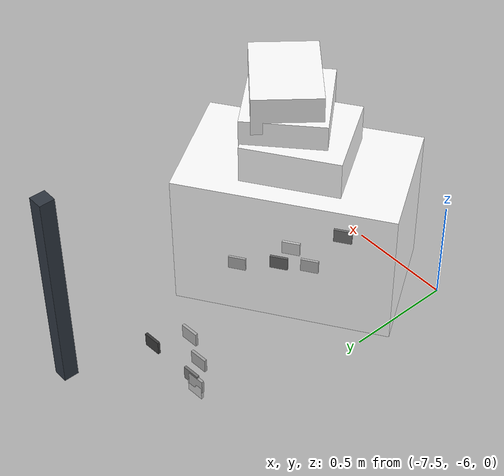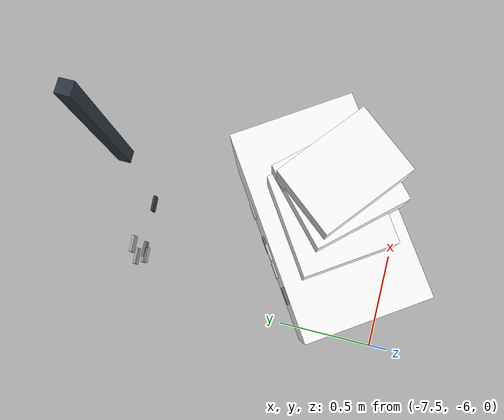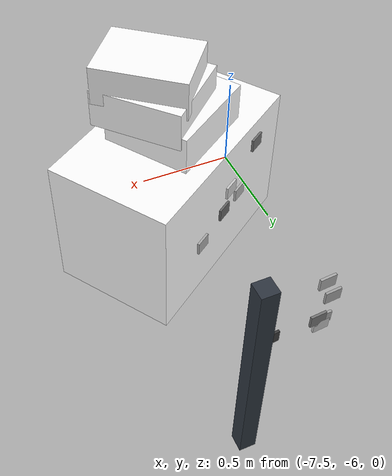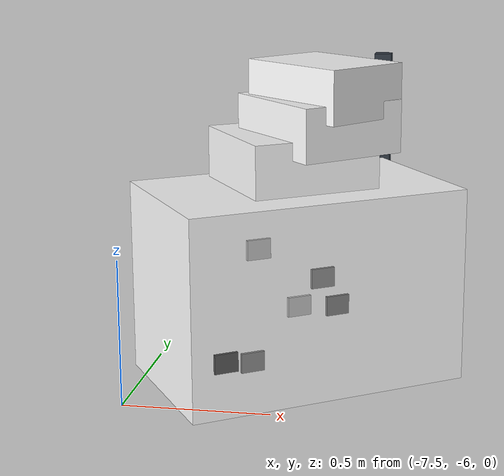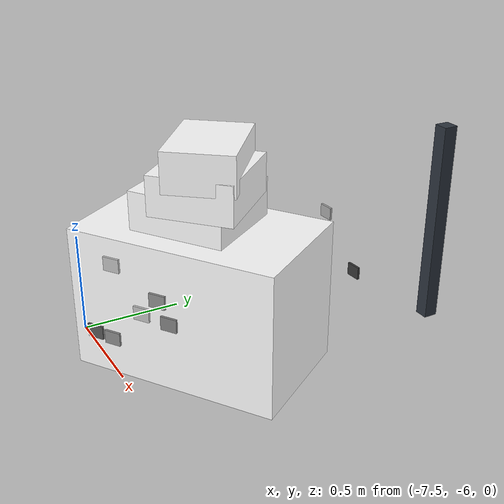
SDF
<sdf version="1.9">
 <world name="warehouse_irregular">
  <model name="panel_23_1_-1">
   <static>true</static>
   <pose>-7.321485212479612 -4.7164891690781525 0.1275751095313873 0 0 0.06392748084731525</pose>
   <link name="body">
    <visual name="surface">
     <geometry><box><size>0.08 0.012 0.065</size></box></geometry>
     <material>
      <ambient>0.7567786720598747 0.7567786720598747 0.7567786720598747 1</ambient>
      <diffuse>0.7567786720598747 0.7567786720598747 0.7567786720598747 1</diffuse>
     </material>
    </visual>
   </link>
  </model>
  <model name="panel_23_2_-1">
   <static>true</static>
   <pose>-7.05458139075606 -4.699403398847534 0.19606144349616522 0 0 0.06392748084731525</pose>
   <link name="body">
    <visual name="surface">
     <geometry><box><size>0.08 0.012 0.065</size></box></geometry>
     <material>
      <ambient>0.2264098315245679 0.2264098315245679 0.2264098315245679 1</ambient>
      <diffuse>0.2264098315245679 0.2264098315245679 0.2264098315245679 1</diffuse>
     </material>
    </visual>
   </link>
  </model>
  <model name="panel_23_3_-1">
   <static>true</static>
   <pose>-7.298738386238302 -4.715033037636777 0.18086479976255804 0 0 0.06392748084731525</pose>
   <link name="body">
    <visual name="surface">
     <geometry><box><size>0.08 0.012 0.065</size></box></geometry>
     <material>
      <ambient>0.4662739748111252 0.4662739748111252 0.4662739748111252 1</ambient>
      <diffuse>0.4662739748111252 0.4662739748111252 0.4662739748111252 1</diffuse>
     </material>
    </visual>
   </link>
  </model>
  <model name="panel_23_4_-1">
   <static>true</static>
   <pose>-7.303042958814106 -4.715308593593588 0.43556237536582776 0 0 0.06392748084731525</pose>
   <link name="body">
    <visual name="surface">
     <geometry><box><size>0.08 0.012 0.065</size></box></geometry>
     <material>
      <ambient>0.6695266798867601 0.6695266798867601 0.6695266798867601 1</ambient>
      <diffuse>0.6695266798867601 0.6695266798867601 0.6695266798867601 1</diffuse>
     </material>
    </visual>
   </link>
  </model>
  <model name="panel_23_5_-1">
   <static>true</static>
   <pose>-7.327186020849928 -4.7168541046617465 0.16970066632918085 0 0 0.06392748084731525</pose>
   <link name="body">
    <visual name="surface">
     <geometry><box><size>0.08 0.012 0.065</size></box></geometry>
     <material>
      <ambient>0.6477002602863507 0.6477002602863507 0.6477002602863507 1</ambient>
      <diffuse>0.6477002602863507 0.6477002602863507 0.6477002602863507 1</diffuse>
     </material>
    </visual>
   </link>
  </model>
  <model name="panel_23_6_-1">
   <static>true</static>
   <pose>-7.350611376439244 -4.7183536719612515 0.3186064492006164 0 0 0.06392748084731525</pose>
   <link name="body">
    <visual name="surface">
     <geometry><box><size>0.08 0.012 0.065</size></box></geometry>
     <material>
      <ambient>0.6359118709224572 0.6359118709224572 0.6359118709224572 1</ambient>
      <diffuse>0.6359118709224572 0.6359118709224572 0.6359118709224572 1</diffuse>
     </material>
    </visual>
   </link>
  </model>
  <model name="post_23_1">
   <static>true</static>
   <pose>-6.793562252673449 -4.4167591657027785 0.5 0 0 0</pose>
   <link name="body">
    <visual name="surface">
     <geometry><box><size>0.07 0.07 1</size></box></geometry>
     <material><ambient>0.18 0.21 0.25 1</ambient><diffuse>0.18 0.21 0.25 1</diffuse></material>
    </visual>
    <collision name="solid"><geometry><box><size>0.07 0.07 1</size></box></geometry></collision>
   </link>
  </model>
  <model name="cabinet_25">
   <static>true</static>
   <pose>-6.980146539905996 -5.593521580022998 0.33923096126565305 0 0 0.5889396456066238</pose>
   <link name="body">
    <visual name="surface">
     <geometry><box><size>1 0.6 0.6784619225313061</size></box></geometry>
     <material>
      <ambient>1 1 1 1</ambient>
      <diffuse>1 1 1 1</diffuse>
      <pbr>
       <metal>
        <albedo_map>model://feature_warehouse_materials/textures/storage_25.png</albedo_map>
        <roughness>.9</roughness>
        <metalness>0</metalness>
       </metal>
      </pbr>
     </material>
    </visual>
    <collision name="solid"><geometry><box><size>1 0.6 0.6784619225313061</size></box></geometry></collision>
   </link>
  </model>
  <model name="panel_25_0_-1">
   <static>true</static>
   <pose>-6.848111647650774 -5.872113171582088 0.43649183449700835 0 0 0.5889396456066238</pose>
   <link name="body">
    <visual name="surface">
     <geometry><box><size>0.08 0.012 0.065</size></box></geometry>
     <material>
      <ambient>0.5540316493555866 0.5540316493555866 0.5540316493555866 1</ambient>
      <diffuse>0.5540316493555866 0.5540316493555866 0.5540316493555866 1</diffuse>
     </material>
    </visual>
   </link>
  </model>
  <model name="panel_25_0_1">
   <static>true</static>
   <pose>-7.1869542150611565 -5.364879779039029 0.43649183449700835 0 0 0.5889396456066238</pose>
   <link name="body">
    <visual name="surface">
     <geometry><box><size>0.08 0.012 0.065</size></box></geometry>
     <material>
      <ambient>0.7933650086156862 0.7933650086156862 0.7933650086156862 1</ambient>
      <diffuse>0.7933650086156862 0.7933650086156862 0.7933650086156862 1</diffuse>
     </material>
    </visual>
   </link>
  </model>
  <model name="panel_25_1_-1">
   <static>true</static>
   <pose>-6.918286101955845 -5.918991182006716 0.35182016730951493 0 0 0.5889396456066238</pose>
   <link name="body">
    <visual name="surface">
     <geometry><box><size>0.08 0.012 0.065</size></box></geometry>
     <material>
      <ambient>0.7504767644359817 0.7504767644359817 0.7504767644359817 1</ambient>
      <diffuse>0.7504767644359817 0.7504767644359817 0.7504767644359817 1</diffuse>
     </material>
    </visual>
   </link>
  </model>
  <model name="panel_25_1_1">
   <static>true</static>
   <pose>-7.257128669366227 -5.411757789463657 0.35182016730951493 0 0 0.5889396456066238</pose>
   <link name="body">
    <visual name="surface">
     <geometry><box><size>0.08 0.012 0.065</size></box></geometry>
     <material>
      <ambient>0.6961097508007626 0.6961097508007626 0.6961097508007626 1</ambient>
      <diffuse>0.6961097508007626 0.6961097508007626 0.6961097508007626 1</diffuse>
     </material>
    </visual>
   </link>
  </model>
  <model name="panel_25_2_-1">
   <static>true</static>
   <pose>-7.035544755404304 -5.997322427089693 0.5583718043402721 0 0 0.5889396456066238</pose>
   <link name="body">
    <visual name="surface">
     <geometry><box><size>0.08 0.012 0.065</size></box></geometry>
     <material>
      <ambient>0.7502621905914509 0.7502621905914509 0.7502621905914509 1</ambient>
      <diffuse>0.7502621905914509 0.7502621905914509 0.7502621905914509 1</diffuse>
     </material>
    </visual>
   </link>
  </model>
  <model name="panel_25_2_1">
   <static>true</static>
   <pose>-7.3743873228146875 -5.490089034546634 0.5583718043402721 0 0 0.5889396456066238</pose>
   <link name="body">
    <visual name="surface">
     <geometry><box><size>0.08 0.012 0.065</size></box></geometry>
     <material>
      <ambient>0.44195825624132823 0.44195825624132823 0.44195825624132823 1</ambient>
      <diffuse>0.44195825624132823 0.44195825624132823 0.44195825624132823 1</diffuse>
     </material>
    </visual>
   </link>
  </model>
  <model name="panel_25_3_1">
   <static>true</static>
   <pose>-6.9829562412296955 -5.228604844825781 0.2873707810077517 0 0 0.5889396456066238</pose>
   <link name="body">
    <visual name="surface">
     <geometry><box><size>0.08 0.012 0.065</size></box></geometry>
     <material>
      <ambient>0.6685473769528507 0.6685473769528507 0.6685473769528507 1</ambient>
      <diffuse>0.6685473769528507 0.6685473769528507 0.6685473769528507 1</diffuse>
     </material>
    </visual>
   </link>
  </model>
  <model name="panel_25_4_-1">
   <static>true</static>
   <pose>-6.803400768540747 -5.842245364589214 0.33660247365651375 0 0 0.5889396456066238</pose>
   <link name="body">
    <visual name="surface">
     <geometry><box><size>0.08 0.012 0.065</size></box></geometry>
     <material>
      <ambient>0.5064640088147528 0.5064640088147528 0.5064640088147528 1</ambient>
      <diffuse>0.5064640088147528 0.5064640088147528 0.5064640088147528 1</diffuse>
     </material>
    </visual>
   </link>
  </model>
  <model name="panel_25_4_1">
   <static>true</static>
   <pose>-7.14224333595113 -5.335011972046155 0.33660247365651375 0 0 0.5889396456066238</pose>
   <link name="body">
    <visual name="surface">
     <geometry><box><size>0.08 0.012 0.065</size></box></geometry>
     <material>
      <ambient>0.3920026805311768 0.3920026805311768 0.3920026805311768 1</ambient>
      <diffuse>0.3920026805311768 0.3920026805311768 0.3920026805311768 1</diffuse>
     </material>
    </visual>
   </link>
  </model>
  <model name="panel_25_5_-1">
   <static>true</static>
   <pose>-7.131207255239867 -6.061226987644479 0.19477800160837822 0 0 0.5889396456066238</pose>
   <link name="body">
    <visual name="surface">
     <geometry><box><size>0.08 0.012 0.065</size></box></geometry>
     <material>
      <ambient>0.34337810413449904 0.34337810413449904 0.34337810413449904 1</ambient>
      <diffuse>0.34337810413449904 0.34337810413449904 0.34337810413449904 1</diffuse>
     </material>
    </visual>
   </link>
  </model>
  <model name="panel_25_6_-1">
   <static>true</static>
   <pose>-7.0550773692259465 -6.010370623665195 0.18490989750573897 0 0 0.5889396456066238</pose>
   <link name="body">
    <visual name="surface">
     <geometry><box><size>0.08 0.012 0.065</size></box></geometry>
     <material>
      <ambient>0.543928510264266 0.543928510264266 0.543928510264266 1</ambient>
      <diffuse>0.543928510264266 0.543928510264266 0.543928510264266 1</diffuse>
     </material>
    </visual>
   </link>
  </model>
  <model name="carton_25_0">
   <static>true</static>
   <pose>-6.993381714915773 -5.593521580022998 0.7784619225313061 0 0 0.5889396456066238</pose>
   <link name="body">
    <visual name="surface">
     <geometry><box><size>0.45 0.42 0.18</size></box></geometry>
     <material>
      <ambient>1 1 1 1</ambient>
      <diffuse>1 1 1 1</diffuse>
      <pbr>
       <metal>
        <albedo_map>model://feature_warehouse_materials/textures/storage_25.png</albedo_map>
        <roughness>.9</roughness>
        <metalness>0</metalness>
       </metal>
      </pbr>
     </material>
    </visual>
    <collision name="solid"><geometry><box><size>0.45 0.42 0.18</size></box></geometry></collision>
   </link>
  </model>
  <model name="carton_25_1">
   <static>true</static>
   <pose>-6.903890694858036 -5.593521580022998 0.8984619225313061 0 0 0.7389396456066238</pose>
   <link name="body">
    <visual name="surface">
     <geometry><box><size>0.38 0.42 0.18</size></box></geometry>
     <material>
      <ambient>1 1 1 1</ambient>
      <diffuse>1 1 1 1</diffuse>
      <pbr>
       <metal>
        <albedo_map>model://feature_warehouse_materials/textures/storage_25.png</albedo_map>
        <roughness>.9</roughness>
        <metalness>0</metalness>
       </metal>
      </pbr>
     </material>
    </visual>
    <collision name="solid"><geometry><box><size>0.38 0.42 0.18</size></box></geometry></collision>
   </link>
  </model>
  <model name="carton_25_2">
   <static>true</static>
   <pose>-6.884508947065545 -5.593521580022998 1.018461922531306 0 0 0.8889396456066239</pose>
   <link name="body">
    <visual name="surface">
     <geometry><box><size>0.31 0.42 0.18</size></box></geometry>
     <material>
      <ambient>1 1 1 1</ambient>
      <diffuse>1 1 1 1</diffuse>
      <pbr>
       <metal>
        <albedo_map>model://feature_warehouse_materials/textures/storage_25.png</albedo_map>
        <roughness>.9</roughness>
        <metalness>0</metalness>
       </metal>
      </pbr>
     </material>
    </visual>
    <collision name="solid"><geometry><box><size>0.31 0.42 0.18</size></box></geometry></collision>
   </link>
  </model>
 </world>
</sdf>
